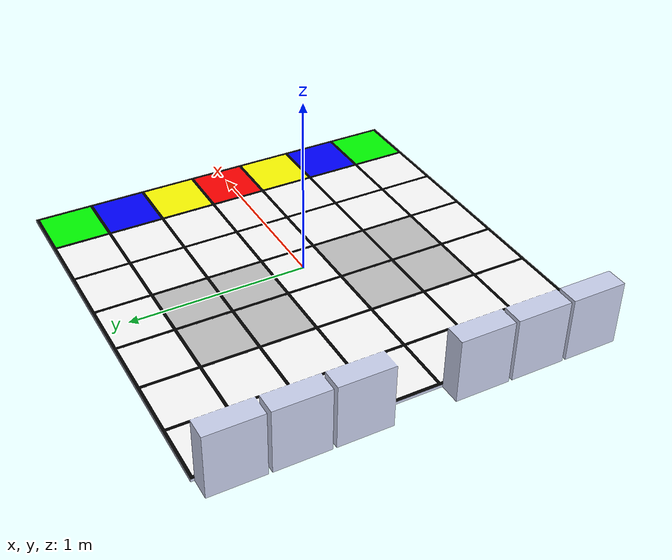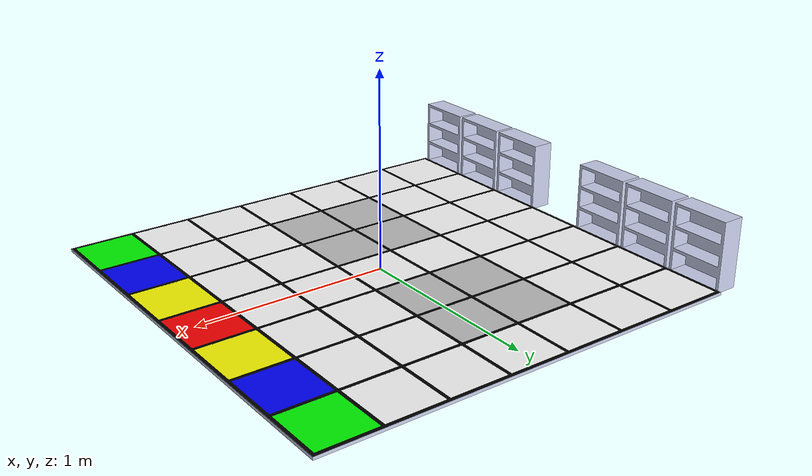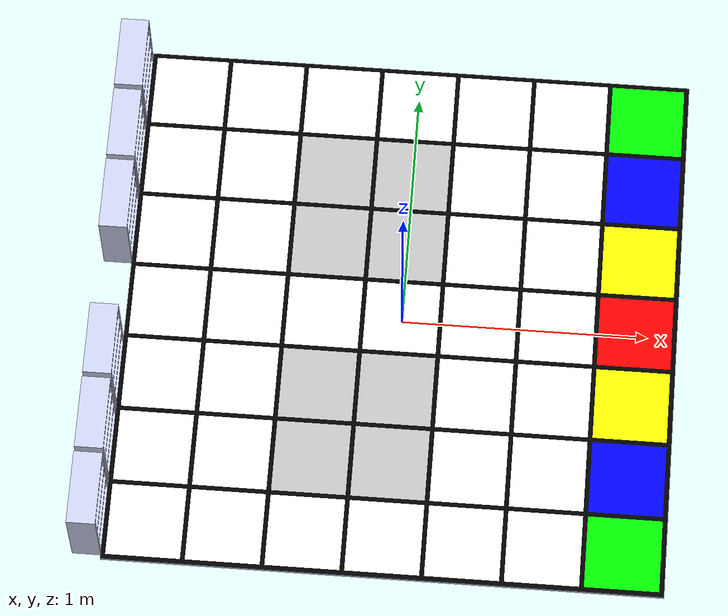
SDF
<?xml version="1.0"?>
<sdf version="1.5">
  <world name="LARC">
    <include>
      <uri>model://sun</uri>
    </include>
    <model name="field">
      <pose>0 0 0  0 0 0</pose>
      <static>true</static>
      <link name="body">
        <collision name="visual">
          <geometry>
            <mesh><uri>file://field/field0.dae</uri></mesh>
          </geometry>
        </collision>

        <visual name="visual">
          <geometry>
            <mesh><uri>file://field/field0.dae</uri></mesh>
          </geometry>
        </visual>
      </link>
    </model>
  </world>
</sdf>
